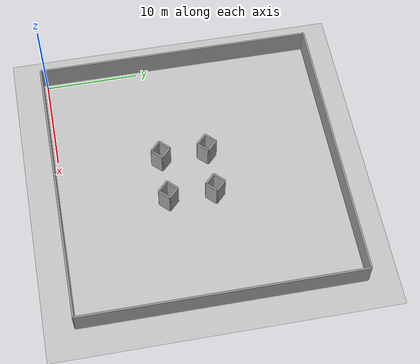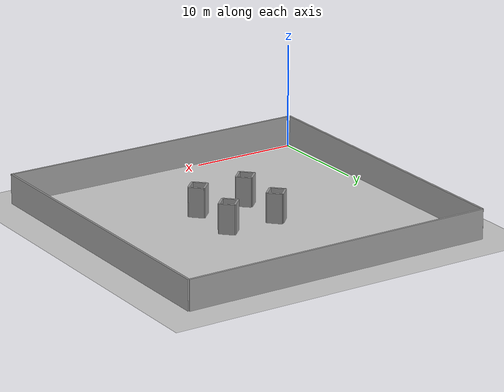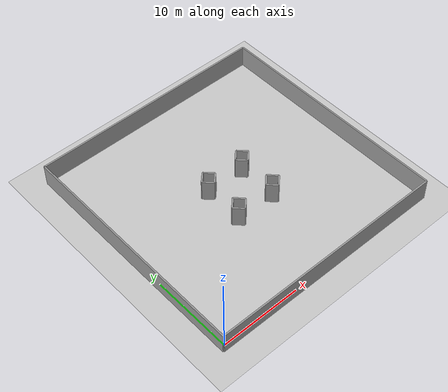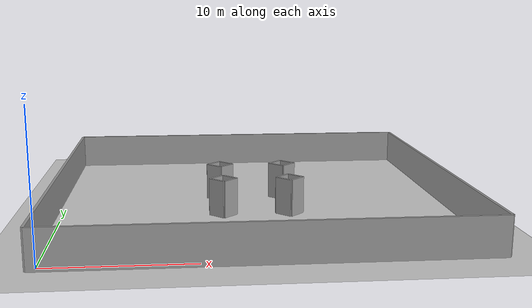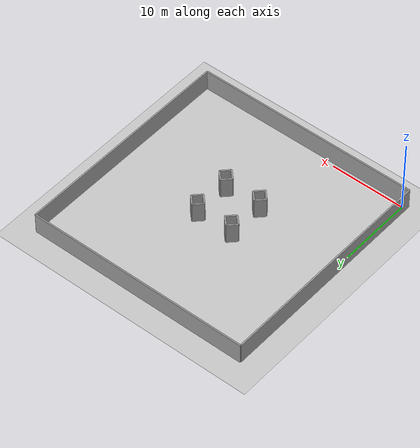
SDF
<?xml version="1.0"?>

<!-- this file is auto generated using pedsim_gazebo_plugin pkg -->
<sdf version="1.5">
  <world name="default">

    <!-- Ground Plane -->

    <include>
      <uri>model://ground_plane</uri>
    </include>

    <include>
      <uri>model://sun</uri>
    </include>

    <physics type="ode">
      <real_time_update_rate>100.0</real_time_update_rate>
      <max_step_size>0.01</max_step_size>
      <real_time_factor>0</real_time_factor>
      <ode>
        <solver>
          <type>quick</type>
          <iters>150</iters>
          <precon_iters>0</precon_iters>
          <sor>1.400000</sor>
          <use_dynamic_moi_rescaling>1</use_dynamic_moi_rescaling>
        </solver>
        <constraints>
          <cfm>0.00001</cfm>
          <erp>0.2</erp>
          <contact_max_correcting_vel>2000.000000</contact_max_correcting_vel>
          <contact_surface_layer>0.01000</contact_surface_layer>
        </constraints>
      </ode>
    </physics>

    <model name="grey_wall_1">
      <static>1</static>
      <link name="link">

        <pose frame="">11.5 11.5  1.4 0 0 0.785398163397</pose>

        <collision name="collision">
          <geometry>
            <box>

              <size> 1.41421356237 .2  2.8 </size>

            </box>
          </geometry>
          <max_contacts>10</max_contacts>
          <surface>
            <contact>
              <ode />
            </contact>
            <bounce />
            <friction>
              <torsional>
                <ode />
              </torsional>
              <ode />
            </friction>
          </surface>
        </collision>
        <visual name="visual">
          <cast_shadows>0</cast_shadows>
          <geometry>
            <box>

              <size> 1.41421356237 .2  2.8 </size>

            </box>
          </geometry>
          <material>
            <script>
              <uri>model://grey_wall/materials/scripts</uri>
              <uri>model://grey_wall/materials/textures</uri>
              <name>vrc/grey_wall</name>
            </script>
          </material>
        </visual>
        <self_collide>0</self_collide>
        <enable_wind>0</enable_wind>
        <kinematic>0</kinematic>
      </link>
    </model>

    <model name="grey_wall_2">
      <static>1</static>
      <link name="link">

        <pose frame="">12.5 11.5  1.4 0 0 -0.785398163397</pose>

        <collision name="collision">
          <geometry>
            <box>

              <size> 1.41421356237 .2  2.8 </size>

            </box>
          </geometry>
          <max_contacts>10</max_contacts>
          <surface>
            <contact>
              <ode />
            </contact>
            <bounce />
            <friction>
              <torsional>
                <ode />
              </torsional>
              <ode />
            </friction>
          </surface>
        </collision>
        <visual name="visual">
          <cast_shadows>0</cast_shadows>
          <geometry>
            <box>

              <size> 1.41421356237 .2  2.8 </size>

            </box>
          </geometry>
          <material>
            <script>
              <uri>model://grey_wall/materials/scripts</uri>
              <uri>model://grey_wall/materials/textures</uri>
              <name>vrc/grey_wall</name>
            </script>
          </material>
        </visual>
        <self_collide>0</self_collide>
        <enable_wind>0</enable_wind>
        <kinematic>0</kinematic>
      </link>
    </model>

    <model name="grey_wall_3">
      <static>1</static>
      <link name="link">

        <pose frame="">12.5 10.5  1.4 0 0 0.785398163397</pose>

        <collision name="collision">
          <geometry>
            <box>

              <size> 1.41421356237 .2  2.8 </size>

            </box>
          </geometry>
          <max_contacts>10</max_contacts>
          <surface>
            <contact>
              <ode />
            </contact>
            <bounce />
            <friction>
              <torsional>
                <ode />
              </torsional>
              <ode />
            </friction>
          </surface>
        </collision>
        <visual name="visual">
          <cast_shadows>0</cast_shadows>
          <geometry>
            <box>

              <size> 1.41421356237 .2  2.8 </size>

            </box>
          </geometry>
          <material>
            <script>
              <uri>model://grey_wall/materials/scripts</uri>
              <uri>model://grey_wall/materials/textures</uri>
              <name>vrc/grey_wall</name>
            </script>
          </material>
        </visual>
        <self_collide>0</self_collide>
        <enable_wind>0</enable_wind>
        <kinematic>0</kinematic>
      </link>
    </model>

    <model name="grey_wall_4">
      <static>1</static>
      <link name="link">

        <pose frame="">11.5 10.5  1.4 0 0 -0.785398163397</pose>

        <collision name="collision">
          <geometry>
            <box>

              <size> 1.41421356237 .2  2.8 </size>

            </box>
          </geometry>
          <max_contacts>10</max_contacts>
          <surface>
            <contact>
              <ode />
            </contact>
            <bounce />
            <friction>
              <torsional>
                <ode />
              </torsional>
              <ode />
            </friction>
          </surface>
        </collision>
        <visual name="visual">
          <cast_shadows>0</cast_shadows>
          <geometry>
            <box>

              <size> 1.41421356237 .2  2.8 </size>

            </box>
          </geometry>
          <material>
            <script>
              <uri>model://grey_wall/materials/scripts</uri>
              <uri>model://grey_wall/materials/textures</uri>
              <name>vrc/grey_wall</name>
            </script>
          </material>
        </visual>
        <self_collide>0</self_collide>
        <enable_wind>0</enable_wind>
        <kinematic>0</kinematic>
      </link>
    </model>

    <model name="grey_wall_5">
      <static>1</static>
      <link name="link">

        <pose frame="">11.5 16.5  1.4 0 0 0.785398163397</pose>

        <collision name="collision">
          <geometry>
            <box>

              <size> 1.41421356237 .2  2.8 </size>

            </box>
          </geometry>
          <max_contacts>10</max_contacts>
          <surface>
            <contact>
              <ode />
            </contact>
            <bounce />
            <friction>
              <torsional>
                <ode />
              </torsional>
              <ode />
            </friction>
          </surface>
        </collision>
        <visual name="visual">
          <cast_shadows>0</cast_shadows>
          <geometry>
            <box>

              <size> 1.41421356237 .2  2.8 </size>

            </box>
          </geometry>
          <material>
            <script>
              <uri>model://grey_wall/materials/scripts</uri>
              <uri>model://grey_wall/materials/textures</uri>
              <name>vrc/grey_wall</name>
            </script>
          </material>
        </visual>
        <self_collide>0</self_collide>
        <enable_wind>0</enable_wind>
        <kinematic>0</kinematic>
      </link>
    </model>

    <model name="grey_wall_6">
      <static>1</static>
      <link name="link">

        <pose frame="">12.5 16.5  1.4 0 0 -0.785398163397</pose>

        <collision name="collision">
          <geometry>
            <box>

              <size> 1.41421356237 .2  2.8 </size>

            </box>
          </geometry>
          <max_contacts>10</max_contacts>
          <surface>
            <contact>
              <ode />
            </contact>
            <bounce />
            <friction>
              <torsional>
                <ode />
              </torsional>
              <ode />
            </friction>
          </surface>
        </collision>
        <visual name="visual">
          <cast_shadows>0</cast_shadows>
          <geometry>
            <box>

              <size> 1.41421356237 .2  2.8 </size>

            </box>
          </geometry>
          <material>
            <script>
              <uri>model://grey_wall/materials/scripts</uri>
              <uri>model://grey_wall/materials/textures</uri>
              <name>vrc/grey_wall</name>
            </script>
          </material>
        </visual>
        <self_collide>0</self_collide>
        <enable_wind>0</enable_wind>
        <kinematic>0</kinematic>
      </link>
    </model>

    <model name="grey_wall_7">
      <static>1</static>
      <link name="link">

        <pose frame="">12.5 15.5  1.4 0 0 0.785398163397</pose>

        <collision name="collision">
          <geometry>
            <box>

              <size> 1.41421356237 .2  2.8 </size>

            </box>
          </geometry>
          <max_contacts>10</max_contacts>
          <surface>
            <contact>
              <ode />
            </contact>
            <bounce />
            <friction>
              <torsional>
                <ode />
              </torsional>
              <ode />
            </friction>
          </surface>
        </collision>
        <visual name="visual">
          <cast_shadows>0</cast_shadows>
          <geometry>
            <box>

              <size> 1.41421356237 .2  2.8 </size>

            </box>
          </geometry>
          <material>
            <script>
              <uri>model://grey_wall/materials/scripts</uri>
              <uri>model://grey_wall/materials/textures</uri>
              <name>vrc/grey_wall</name>
            </script>
          </material>
        </visual>
        <self_collide>0</self_collide>
        <enable_wind>0</enable_wind>
        <kinematic>0</kinematic>
      </link>
    </model>

    <model name="grey_wall_8">
      <static>1</static>
      <link name="link">

        <pose frame="">11.5 15.5  1.4 0 0 -0.785398163397</pose>

        <collision name="collision">
          <geometry>
            <box>

              <size> 1.41421356237 .2  2.8 </size>

            </box>
          </geometry>
          <max_contacts>10</max_contacts>
          <surface>
            <contact>
              <ode />
            </contact>
            <bounce />
            <friction>
              <torsional>
                <ode />
              </torsional>
              <ode />
            </friction>
          </surface>
        </collision>
        <visual name="visual">
          <cast_shadows>0</cast_shadows>
          <geometry>
            <box>

              <size> 1.41421356237 .2  2.8 </size>

            </box>
          </geometry>
          <material>
            <script>
              <uri>model://grey_wall/materials/scripts</uri>
              <uri>model://grey_wall/materials/textures</uri>
              <name>vrc/grey_wall</name>
            </script>
          </material>
        </visual>
        <self_collide>0</self_collide>
        <enable_wind>0</enable_wind>
        <kinematic>0</kinematic>
      </link>
    </model>

    <model name="grey_wall_9">
      <static>1</static>
      <link name="link">

        <pose frame="">16.5 11.5  1.4 0 0 0.785398163397</pose>

        <collision name="collision">
          <geometry>
            <box>

              <size> 1.41421356237 .2  2.8 </size>

            </box>
          </geometry>
          <max_contacts>10</max_contacts>
          <surface>
            <contact>
              <ode />
            </contact>
            <bounce />
            <friction>
              <torsional>
                <ode />
              </torsional>
              <ode />
            </friction>
          </surface>
        </collision>
        <visual name="visual">
          <cast_shadows>0</cast_shadows>
          <geometry>
            <box>

              <size> 1.41421356237 .2  2.8 </size>

            </box>
          </geometry>
          <material>
            <script>
              <uri>model://grey_wall/materials/scripts</uri>
              <uri>model://grey_wall/materials/textures</uri>
              <name>vrc/grey_wall</name>
            </script>
          </material>
        </visual>
        <self_collide>0</self_collide>
        <enable_wind>0</enable_wind>
        <kinematic>0</kinematic>
      </link>
    </model>

    <model name="grey_wall_10">
      <static>1</static>
      <link name="link">

        <pose frame="">17.5 11.5  1.4 0 0 -0.785398163397</pose>

        <collision name="collision">
          <geometry>
            <box>

              <size> 1.41421356237 .2  2.8 </size>

            </box>
          </geometry>
          <max_contacts>10</max_contacts>
          <surface>
            <contact>
              <ode />
            </contact>
            <bounce />
            <friction>
              <torsional>
                <ode />
              </torsional>
              <ode />
            </friction>
          </surface>
        </collision>
        <visual name="visual">
          <cast_shadows>0</cast_shadows>
          <geometry>
            <box>

              <size> 1.41421356237 .2  2.8 </size>

            </box>
          </geometry>
          <material>
            <script>
              <uri>model://grey_wall/materials/scripts</uri>
              <uri>model://grey_wall/materials/textures</uri>
              <name>vrc/grey_wall</name>
            </script>
          </material>
        </visual>
        <self_collide>0</self_collide>
        <enable_wind>0</enable_wind>
        <kinematic>0</kinematic>
      </link>
    </model>

    <model name="grey_wall_11">
      <static>1</static>
      <link name="link">

        <pose frame="">17.5 10.5  1.4 0 0 0.785398163397</pose>

        <collision name="collision">
          <geometry>
            <box>

              <size> 1.41421356237 .2  2.8 </size>

            </box>
          </geometry>
          <max_contacts>10</max_contacts>
          <surface>
            <contact>
              <ode />
            </contact>
            <bounce />
            <friction>
              <torsional>
                <ode />
              </torsional>
              <ode />
            </friction>
          </surface>
        </collision>
        <visual name="visual">
          <cast_shadows>0</cast_shadows>
          <geometry>
            <box>

              <size> 1.41421356237 .2  2.8 </size>

            </box>
          </geometry>
          <material>
            <script>
              <uri>model://grey_wall/materials/scripts</uri>
              <uri>model://grey_wall/materials/textures</uri>
              <name>vrc/grey_wall</name>
            </script>
          </material>
        </visual>
        <self_collide>0</self_collide>
        <enable_wind>0</enable_wind>
        <kinematic>0</kinematic>
      </link>
    </model>

    <model name="grey_wall_12">
      <static>1</static>
      <link name="link">

        <pose frame="">16.5 10.5  1.4 0 0 -0.785398163397</pose>

        <collision name="collision">
          <geometry>
            <box>

              <size> 1.41421356237 .2  2.8 </size>

            </box>
          </geometry>
          <max_contacts>10</max_contacts>
          <surface>
            <contact>
              <ode />
            </contact>
            <bounce />
            <friction>
              <torsional>
                <ode />
              </torsional>
              <ode />
            </friction>
          </surface>
        </collision>
        <visual name="visual">
          <cast_shadows>0</cast_shadows>
          <geometry>
            <box>

              <size> 1.41421356237 .2  2.8 </size>

            </box>
          </geometry>
          <material>
            <script>
              <uri>model://grey_wall/materials/scripts</uri>
              <uri>model://grey_wall/materials/textures</uri>
              <name>vrc/grey_wall</name>
            </script>
          </material>
        </visual>
        <self_collide>0</self_collide>
        <enable_wind>0</enable_wind>
        <kinematic>0</kinematic>
      </link>
    </model>

    <model name="grey_wall_13">
      <static>1</static>
      <link name="link">

        <pose frame="">16.5 16.5  1.4 0 0 0.785398163397</pose>

        <collision name="collision">
          <geometry>
            <box>

              <size> 1.41421356237 .2  2.8 </size>

            </box>
          </geometry>
          <max_contacts>10</max_contacts>
          <surface>
            <contact>
              <ode />
            </contact>
            <bounce />
            <friction>
              <torsional>
                <ode />
              </torsional>
              <ode />
            </friction>
          </surface>
        </collision>
        <visual name="visual">
          <cast_shadows>0</cast_shadows>
          <geometry>
            <box>

              <size> 1.41421356237 .2  2.8 </size>

            </box>
          </geometry>
          <material>
            <script>
              <uri>model://grey_wall/materials/scripts</uri>
              <uri>model://grey_wall/materials/textures</uri>
              <name>vrc/grey_wall</name>
            </script>
          </material>
        </visual>
        <self_collide>0</self_collide>
        <enable_wind>0</enable_wind>
        <kinematic>0</kinematic>
      </link>
    </model>

    <model name="grey_wall_14">
      <static>1</static>
      <link name="link">

        <pose frame="">17.5 16.5  1.4 0 0 -0.785398163397</pose>

        <collision name="collision">
          <geometry>
            <box>

              <size> 1.41421356237 .2  2.8 </size>

            </box>
          </geometry>
          <max_contacts>10</max_contacts>
          <surface>
            <contact>
              <ode />
            </contact>
            <bounce />
            <friction>
              <torsional>
                <ode />
              </torsional>
              <ode />
            </friction>
          </surface>
        </collision>
        <visual name="visual">
          <cast_shadows>0</cast_shadows>
          <geometry>
            <box>

              <size> 1.41421356237 .2  2.8 </size>

            </box>
          </geometry>
          <material>
            <script>
              <uri>model://grey_wall/materials/scripts</uri>
              <uri>model://grey_wall/materials/textures</uri>
              <name>vrc/grey_wall</name>
            </script>
          </material>
        </visual>
        <self_collide>0</self_collide>
        <enable_wind>0</enable_wind>
        <kinematic>0</kinematic>
      </link>
    </model>

    <model name="grey_wall_15">
      <static>1</static>
      <link name="link">

        <pose frame="">17.5 15.5  1.4 0 0 0.785398163397</pose>

        <collision name="collision">
          <geometry>
            <box>

              <size> 1.41421356237 .2  2.8 </size>

            </box>
          </geometry>
          <max_contacts>10</max_contacts>
          <surface>
            <contact>
              <ode />
            </contact>
            <bounce />
            <friction>
              <torsional>
                <ode />
              </torsional>
              <ode />
            </friction>
          </surface>
        </collision>
        <visual name="visual">
          <cast_shadows>0</cast_shadows>
          <geometry>
            <box>

              <size> 1.41421356237 .2  2.8 </size>

            </box>
          </geometry>
          <material>
            <script>
              <uri>model://grey_wall/materials/scripts</uri>
              <uri>model://grey_wall/materials/textures</uri>
              <name>vrc/grey_wall</name>
            </script>
          </material>
        </visual>
        <self_collide>0</self_collide>
        <enable_wind>0</enable_wind>
        <kinematic>0</kinematic>
      </link>
    </model>

    <model name="grey_wall_16">
      <static>1</static>
      <link name="link">

        <pose frame="">16.5 15.5  1.4 0 0 -0.785398163397</pose>

        <collision name="collision">
          <geometry>
            <box>

              <size> 1.41421356237 .2  2.8 </size>

            </box>
          </geometry>
          <max_contacts>10</max_contacts>
          <surface>
            <contact>
              <ode />
            </contact>
            <bounce />
            <friction>
              <torsional>
                <ode />
              </torsional>
              <ode />
            </friction>
          </surface>
        </collision>
        <visual name="visual">
          <cast_shadows>0</cast_shadows>
          <geometry>
            <box>

              <size> 1.41421356237 .2  2.8 </size>

            </box>
          </geometry>
          <material>
            <script>
              <uri>model://grey_wall/materials/scripts</uri>
              <uri>model://grey_wall/materials/textures</uri>
              <name>vrc/grey_wall</name>
            </script>
          </material>
        </visual>
        <self_collide>0</self_collide>
        <enable_wind>0</enable_wind>
        <kinematic>0</kinematic>
      </link>
    </model>

    <model name="grey_wall_17">
      <static>1</static>
      <link name="link">

        <pose frame="">14.5 -0.5  1.4 0 0 0.0</pose>

        <collision name="collision">
          <geometry>
            <box>

              <size> 30.0 .2  2.8 </size>

            </box>
          </geometry>
          <max_contacts>10</max_contacts>
          <surface>
            <contact>
              <ode />
            </contact>
            <bounce />
            <friction>
              <torsional>
                <ode />
              </torsional>
              <ode />
            </friction>
          </surface>
        </collision>
        <visual name="visual">
          <cast_shadows>0</cast_shadows>
          <geometry>
            <box>

              <size> 30.0 .2  2.8 </size>

            </box>
          </geometry>
          <material>
            <script>
              <uri>model://grey_wall/materials/scripts</uri>
              <uri>model://grey_wall/materials/textures</uri>
              <name>vrc/grey_wall</name>
            </script>
          </material>
        </visual>
        <self_collide>0</self_collide>
        <enable_wind>0</enable_wind>
        <kinematic>0</kinematic>
      </link>
    </model>

    <model name="grey_wall_18">
      <static>1</static>
      <link name="link">

        <pose frame="">-0.5 14.5  1.4 0 0 1.57</pose>

        <collision name="collision">
          <geometry>
            <box>

              <size> 30.0 .2  2.8 </size>

            </box>
          </geometry>
          <max_contacts>10</max_contacts>
          <surface>
            <contact>
              <ode />
            </contact>
            <bounce />
            <friction>
              <torsional>
                <ode />
              </torsional>
              <ode />
            </friction>
          </surface>
        </collision>
        <visual name="visual">
          <cast_shadows>0</cast_shadows>
          <geometry>
            <box>

              <size> 30.0 .2  2.8 </size>

            </box>
          </geometry>
          <material>
            <script>
              <uri>model://grey_wall/materials/scripts</uri>
              <uri>model://grey_wall/materials/textures</uri>
              <name>vrc/grey_wall</name>
            </script>
          </material>
        </visual>
        <self_collide>0</self_collide>
        <enable_wind>0</enable_wind>
        <kinematic>0</kinematic>
      </link>
    </model>

    <model name="grey_wall_19">
      <static>1</static>
      <link name="link">

        <pose frame="">14.5 29.5  1.4 0 0 0.0</pose>

        <collision name="collision">
          <geometry>
            <box>

              <size> 30.0 .2  2.8 </size>

            </box>
          </geometry>
          <max_contacts>10</max_contacts>
          <surface>
            <contact>
              <ode />
            </contact>
            <bounce />
            <friction>
              <torsional>
                <ode />
              </torsional>
              <ode />
            </friction>
          </surface>
        </collision>
        <visual name="visual">
          <cast_shadows>0</cast_shadows>
          <geometry>
            <box>

              <size> 30.0 .2  2.8 </size>

            </box>
          </geometry>
          <material>
            <script>
              <uri>model://grey_wall/materials/scripts</uri>
              <uri>model://grey_wall/materials/textures</uri>
              <name>vrc/grey_wall</name>
            </script>
          </material>
        </visual>
        <self_collide>0</self_collide>
        <enable_wind>0</enable_wind>
        <kinematic>0</kinematic>
      </link>
    </model>

    <model name="grey_wall_20">
      <static>1</static>
      <link name="link">

        <pose frame="">29.5 14.5  1.4 0 0 1.57</pose>

        <collision name="collision">
          <geometry>
            <box>

              <size> 30.0 .2  2.8 </size>

            </box>
          </geometry>
          <max_contacts>10</max_contacts>
          <surface>
            <contact>
              <ode />
            </contact>
            <bounce />
            <friction>
              <torsional>
                <ode />
              </torsional>
              <ode />
            </friction>
          </surface>
        </collision>
        <visual name="visual">
          <cast_shadows>0</cast_shadows>
          <geometry>
            <box>

              <size> 30.0 .2  2.8 </size>

            </box>
          </geometry>
          <material>
            <script>
              <uri>model://grey_wall/materials/scripts</uri>
              <uri>model://grey_wall/materials/textures</uri>
              <name>vrc/grey_wall</name>
            </script>
          </material>
        </visual>
        <self_collide>0</self_collide>
        <enable_wind>0</enable_wind>
        <kinematic>0</kinematic>
      </link>
    </model>

    <plugin name="ActorPosesPlugin" filename="libActorPosesPlugin.so"></plugin>

  </world>
</sdf>
